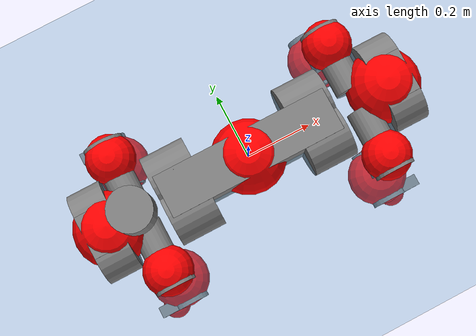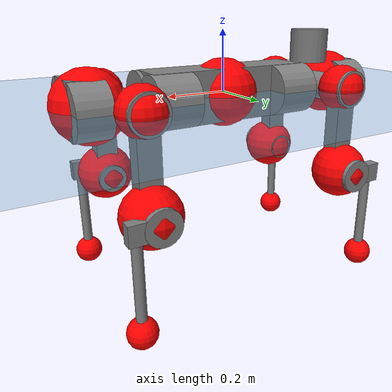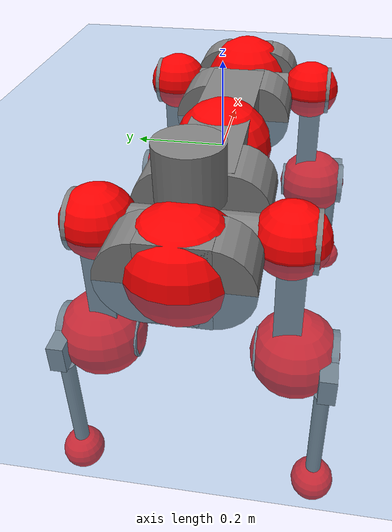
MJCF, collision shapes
<mujoco model="anymal_c">
  <compiler angle="radian" assetdir="assets" balanceinertia="true" inertiafromgeom="false"/>

  <option timestep="0.005" density="1.2" viscosity="2e-05"/>

  <size nkey="1"/>

  <visual>
    <quality shadowsize="8192"/>
    <map shadowclip="0.5"/>
  </visual>

  <default>
    <default class="/">
      <material specular="0" shininess="0.25"/>
      <geom contype="0" conaffinity="0" group="1" solref="-1000 -80"/>
      <site size="0.01 0.005 0.005" group="5"/>
      <general forcelimited="true" forcerange="-80 80" biastype="affine" gainprm="80" biasprm="0 -80 -2"/>
      <default class="anymal_c">
        <joint armature="0.01" damping="0.01" frictionloss="0.1"/>
        <default class="visual">
          <geom type="mesh" group="2"/>
          <default class="visual_zflip"/>
        </default>
        <default class="collision">
          <geom type="cylinder" group="3"/>
          <default class="foot">
            <geom size="0.03 0 0" type="sphere" condim="6" priority="1" friction="0.8 0.02 0.01" solimp="0.015 1 0.03"/>
          </default>
        </default>
      </default>
      <default class="reward_collision_sphere">
        <geom group="5" rgba="1 0 0 1"/>
      </default>
    </default>
  </default>

  <asset>
    <texture type="skybox" colorspace="auto" name="//unnamed_texture_0" builtin="gradient" rgb1="0.95 0.95 0.95" rgb2="0.95 0.95 0.95" width="100" height="600"/>
    <texture type="2d" colorspace="auto" name="texplane" builtin="checker" rgb1="0.345 0.575 0.748" rgb2="0.345 0.575 0.748" markrgb="1 1 1" width="512" height="512"/>
    <texture type="2d" colorspace="linear" name="base" file="base.png"/>
    <texture type="2d" colorspace="linear" name="top_shell" file="top_shell.png"/>
    <texture type="2d" colorspace="linear" name="bottom_shell" file="bottom_shell.png"/>
    <texture type="2d" colorspace="linear" name="remote" file="remote.png"/>
    <texture type="2d" colorspace="linear" name="hatch" file="hatch.png"/>
    <texture type="2d" colorspace="linear" name="handle" file="handle.png"/>
    <texture type="2d" colorspace="linear" name="face" file="face.png"/>
    <texture type="2d" colorspace="linear" name="battery" file="battery.png"/>
    <texture type="2d" colorspace="linear" name="lidar_cage" file="lidar_cage.png"/>
    <texture type="2d" colorspace="linear" name="depth_camera" file="depth_camera.png"/>
    <texture type="2d" colorspace="linear" name="wide_angle_camera" file="wide_angle_camera.png"/>
    <texture type="2d" colorspace="linear" name="lidar" file="lidar.png"/>
    <texture type="2d" colorspace="linear" name="drive" file="drive.png"/>
    <texture type="2d" colorspace="linear" name="hip_l" file="hip_l.png"/>
    <texture type="2d" colorspace="linear" name="shank_l" file="shank_l.png"/>
    <texture type="2d" colorspace="linear" name="foot" file="foot.png"/>
    <texture type="2d" colorspace="linear" name="thigh" file="thigh.png"/>
    <texture type="2d" colorspace="linear" name="shank_r" file="shank_r.png"/>
    <texture type="2d" colorspace="linear" name="hip_r" file="hip_r.png"/>
    <material name="MatPlane" class="/" texture="texplane" texuniform="true" texrepeat="2 2" specular="0.9" shininess="0.5"/>
    <material name="black_plastic" class="/" rgba="0.007 0.007 0.007 1"/>
    <material name="green" class="/" rgba="0.052 0.178 0.033 1"/>
    <material name="red" class="/" rgba="0.178 0.006 0.005 1"/>
    <material name="yellow" class="/" rgba="0.178 0.119 0.006 1"/>
    <material name="lwl" class="/" rgba="0.8 0.8 0.8 1"/>
    <material name="base" class="/" texture="base"/>
    <material name="top_shell" class="/" texture="top_shell"/>
    <material name="bottom_shell" class="/" texture="bottom_shell"/>
    <material name="hip_l" class="/" texture="hip_l"/>
    <material name="thigh" class="/" texture="thigh"/>
    <material name="shank_l" class="/" texture="shank_l"/>
    <material name="foot" class="/" texture="foot"/>
    <material name="hip_r" class="/" texture="hip_r"/>
    <material name="shank" class="/" texture="shank_r"/>
    <material name="hatch" class="/" texture="hatch"/>
    <material name="remote" class="/" texture="remote"/>
    <material name="handle" class="/" texture="handle"/>
    <material name="face" class="/" texture="face"/>
    <material name="depth_camera" class="/" texture="depth_camera"/>
    <material name="wide_angle_camera" class="/" texture="wide_angle_camera"/>
    <material name="battery" class="/" texture="battery"/>
    <material name="lidar_cage" class="/" texture="lidar_cage"/>
    <material name="lidar" class="/" texture="lidar"/>
    <material name="drive" class="/" texture="drive"/>
    <mesh name="base_0" class="/" file="base_0.obj"/>
    <mesh name="base_1" class="/" file="base_1.obj"/>
    <mesh name="base_2" class="/" file="base_2.obj"/>
    <mesh name="base_3" class="/" file="base_3.obj"/>
    <mesh name="base_4" class="/" file="base_4.obj"/>
    <mesh name="base_5" class="/" file="base_5.obj"/>
    <mesh name="top_shell" class="/" file="top_shell.obj"/>
    <mesh name="bottom_shell" class="/" file="bottom_shell.obj"/>
    <mesh name="remote" class="/" file="remote.obj"/>
    <mesh name="handle" class="/" file="handle.obj"/>
    <mesh name="face" class="/" file="face.obj"/>
    <mesh name="wide_angle_camera" class="/" file="wide_angle_camera.obj"/>
    <mesh name="depth_camera" class="/" file="depth_camera.obj"/>
    <mesh name="battery" class="/" file="battery.obj"/>
    <mesh name="lidar_cage" class="/" file="lidar_cage.obj"/>
    <mesh name="lidar" class="/" file="lidar.obj"/>
    <mesh name="drive" class="/" file="drive.obj"/>
    <mesh name="hip_l" class="/" file="hip_l.obj"/>
    <mesh name="thigh" class="/" file="thigh.obj"/>
    <mesh name="shank_l" class="/" file="shank_l.obj"/>
    <mesh name="foot" class="/" file="foot.obj"/>
    <mesh name="hip_r" class="/" file="hip_r.obj"/>
    <mesh name="hatch" class="/" file="hatch.obj"/>
    <mesh name="shank_r" class="/" file="shank_r.obj"/>
  </asset>

  <worldbody>
    <geom name="floor" class="/" size="100 100 0.125" type="plane" group="0" material="MatPlane"/>
    <light name="toplight_shadow" class="/" pos="0 0 5" dir="0.0990148 0.0990148 -0.990148" type="directional" ambient="0.04 0.04 0.04" diffuse="0.55 0.55 0.55" specular="0.12 0.12 0.12"/>
    <light name="toplight_fill" class="/" pos="0 0 5" dir="0.0990148 0.0990148 -0.990148" type="directional" castshadow="false" ambient="0.04 0.04 0.04" diffuse="0.3 0.3 0.3" specular="0.08 0.08 0.08"/>
    <body name="trunk" childclass="anymal_c" pos="-0.000169457 9.25199e-05 -0.00204041" quat="1 -4.3265e-05 0.000181806 0.000149205">
      <inertial pos="-0.000157728 -0.00288258 0.0494622" quat="0.502748 0.498566 0.498549 0.500126" mass="16.0623" diaginertia="0.654096 0.231428 0.24408"/>
      <joint name="//unnamed_joint_0" type="free" armature="0" damping="0" frictionloss="0"/>
      <geom name="//unnamed_geom_1" class="visual" material="green" mesh="base_0"/>
      <geom name="//unnamed_geom_2" class="visual" material="yellow" mesh="base_1"/>
      <geom name="//unnamed_geom_3" class="visual" material="red" mesh="base_2"/>
      <geom name="//unnamed_geom_4" class="visual" material="black_plastic" mesh="base_3"/>
      <geom name="//unnamed_geom_5" class="visual" material="lwl" mesh="base_4"/>
      <geom name="//unnamed_geom_6" class="visual" material="base" mesh="base_5"/>
      <geom name="trunk_1" class="collision" size="0.273567 0.0660334 0.0849001" type="box"/>
      <geom name="trunk_2" class="collision" size="0.0849001 0.0683918" pos="0.217478 0.057074 0" quat="0.707107 0 0.707107 0"/>
      <geom name="trunk_3" class="collision" size="0.0849001 0.0683918" pos="-0.217478 0.057074 0" quat="0.707107 0 0.707107 0"/>
      <geom name="trunk_4" class="collision" size="0.0849001 0.0683918" pos="0.217478 -0.057074 0" quat="0.707107 0 0.707107 0"/>
      <geom name="trunk_5" class="collision" size="0.0849001 0.0683918" pos="-0.217478 -0.057074 0" quat="0.707107 0 0.707107 0"/>
      <geom name="//unnamed_geom_12" class="visual" material="top_shell" mesh="top_shell"/>
      <geom name="//unnamed_geom_13" class="visual" material="bottom_shell" mesh="bottom_shell"/>
      <geom name="//unnamed_geom_14" class="visual" material="remote" mesh="remote"/>
      <geom name="//unnamed_geom_15" class="visual" material="handle" mesh="handle"/>
      <geom name="//unnamed_geom_16" class="visual" pos="0.414458 0 0" quat="1 0 0 0" material="face" mesh="face"/>
      <geom name="trunk_6" class="collision" size="0.0518834 0.0660334 0.0849001" pos="0.469453 0 0" type="box"/>
      <geom name="//unnamed_geom_18" class="collision" size="0.0849001 0.0518834" pos="0.469453 0.057074 0" quat="0.707107 0 0.707107 0"/>
      <geom name="//unnamed_geom_19" class="collision" size="0.0849001 0.0518834" pos="0.469453 -0.057074 0" quat="0.707107 0 0.707107 0"/>
      <geom name="//unnamed_geom_20" class="visual" pos="0.461604 0 -0.029744" quat="0.965926 0 0.258819 0" material="depth_camera" mesh="depth_camera"/>
      <geom name="//unnamed_geom_21" class="visual" pos="0.512948 0 0.015191" material="wide_angle_camera" mesh="wide_angle_camera"/>
      <geom name="//unnamed_geom_22" class="visual_zflip" pos="-0.414458 0 0" quat="0 0 0 1" material="face" mesh="face"/>
      <geom name="trunk_7" class="collision" size="0.0518834 0.0660334 0.0849001" pos="-0.469453 0 0" quat="0 0 0 1" type="box"/>
      <geom name="//unnamed_geom_24" class="collision" size="0.0849001 0.0518834" pos="-0.469453 -0.057074 0" quat="0 -0.707107 0 0.707107"/>
      <geom name="//unnamed_geom_25" class="collision" size="0.0849001 0.0518834" pos="-0.469453 0.057074 0" quat="0 -0.707107 0 0.707107"/>
      <geom name="//unnamed_geom_26" class="visual" pos="-0.461604 0 -0.029744" quat="0 -0.258819 0 0.965926" material="depth_camera" mesh="depth_camera"/>
      <geom name="//unnamed_geom_27" class="visual_zflip" pos="-0.512948 0 0.015191" quat="0 0 0 1" material="wide_angle_camera" mesh="wide_angle_camera"/>
      <geom name="//unnamed_geom_28" class="visual" material="battery" mesh="battery"/>
      <geom name="//unnamed_geom_29" class="visual" pos="0 0.05992 0.0293659" quat="0.683013 -0.183013 0.183013 0.683013" material="depth_camera" mesh="depth_camera"/>
      <geom name="//unnamed_geom_30" class="visual" pos="0 -0.05992 0.0293659" quat="0.683013 0.183013 0.183013 -0.683013" material="depth_camera" mesh="depth_camera"/>
      <geom name="//unnamed_geom_31" class="visual" pos="-0.363963 0 0.074585" quat="1 0 0 0" material="lidar_cage" mesh="lidar_cage"/>
      <geom name="trunk_8" class="collision" size="0.0660334 0.0566001" pos="-0.363963 0 0.135471"/>
      <geom name="//unnamed_geom_33" class="visual" pos="-0.363963 -7.25071e-05 0.144299" quat="0.707107 0 0 -0.707107" material="lidar" mesh="lidar"/>
      <geom name="//unnamed_geom_34" class="visual" pos="0.29987 0.0848665 -3.43999e-09" quat="0.258819 0.965926 0 0" material="drive" mesh="drive"/>
      <geom name="//unnamed_geom_35" class="visual" pos="0.29987 -0.0848665 3.43999e-09" quat="0.258819 -0.965926 0 0" material="drive" mesh="drive"/>
      <geom name="//unnamed_geom_36" class="visual" pos="-0.29987 0.0848665 3.43999e-09" quat="0 0 0.965926 -0.258819" material="drive" mesh="drive"/>
      <geom name="//unnamed_geom_37" class="visual" pos="-0.29987 -0.0848665 -3.43999e-09" quat="0 0 -0.965926 -0.258819" material="drive" mesh="drive"/>
      <geom name="//unnamed_geom_38" class="visual" pos="0.115988 0 0.0740776" quat="1 0 0 0" material="hatch" mesh="hatch"/>
      <geom name="//unnamed_geom_39" class="reward_collision_sphere" size="0.1132"/>
      <geom name="//unnamed_geom_40" class="reward_collision_sphere" size="0.1132" pos="0.449955 0 0"/>
      <geom name="//unnamed_geom_41" class="reward_collision_sphere" size="0.1132" pos="-0.449955 0 0"/>
      <site name="imu" pos="0.235627 0.0107153 0.0604777" size="0.00943335"/>
      <camera name="track" pos="0 -1.63069 0" quat="0.707107 0.707107 0 0" mode="trackcom"/>
      <camera name="ego_camera" pos="0.449955 0 -0.0405905" quat="-0.5 -0.5 0.5 0.5"/>
      <body name="LF_HIP" pos="0.299465 0.0860466 0.00120142" quat="0.258751 0.965944 -0.000410045 0.000114305">
        <inertial pos="0.0594133 -0.012913 -0.00834571" quat="-0.13119 0.712663 -0.130139 0.676731" mass="2.24023" diaginertia="0.005618 0.00175646 0.00349303"/>
        <joint name="LF_HAA" pos="0 0 0" axis="0.999893 -0.0111665 -0.00947694" range="-0.72198 0.509179" armature="0.0107114" damping="0" frictionloss="0.0992536"/>
        <geom name="//unnamed_geom_42" class="visual" pos="0 -0.000202359 3.32374e-05" quat="0.258819 -0.965926 0 0" material="hip_l" mesh="hip_l"/>
        <geom name="//unnamed_geom_43" class="visual" pos="0.059894 -0.0702152 -0.0420138" quat="0.183013 -0.683013 0.683013 0.183013" material="drive" mesh="drive"/>
        <geom name="//unnamed_geom_44" class="collision" size="0.0471667 0.0660334" pos="0.059894 -0.00975134 -0.00700693" quat="-0.353553 -0.612372 0.612372 -0.353553"/>
        <body name="LF_THIGH" pos="0.0600645 -0.0581969 -0.0439218" quat="0.182936 -0.683031 0.682999 0.183071">
          <inertial pos="0.0314937 -9.80337e-05 -0.246559" quat="0.99297 -0.00446562 -0.0846708 0.0825873" mass="2.63554" diaginertia="0.0292964 0.0107927 0.00457486"/>
          <joint name="LF_HFE" pos="0 0 0" axis="0.999877 0.00106806 0.0156591" range="-3.12617 3.11628" armature="0.00901744" damping="0.0127342" frictionloss="0.0816414"/>
          <geom name="//unnamed_geom_45" class="visual" pos="0.00367194 5.78612e-06 0" quat="0.707107 0 0 -0.707107" material="thigh" mesh="thigh"/>
          <geom name="//unnamed_geom_46" class="collision" size="0.0613167 0.0377334" pos="0.039996 0 0" quat="0.5 0.5 -0.5 -0.5"/>
          <geom name="//unnamed_geom_47" class="collision" size="0.035375 0.0283 0.133306" pos="0.029997 0 -0.1434" quat="0.707107 0 0 -0.707107" type="box"/>
          <geom name="//unnamed_geom_48" class="visual" pos="0.10029 0 -0.289207" quat="1 0 0 0" material="drive" mesh="drive"/>
          <geom name="//unnamed_geom_49" class="collision" size="0.0471667 0.0660334" pos="0.0302969 0 -0.289207" quat="0.707107 0 0.707107 0"/>
          <geom name="//unnamed_geom_50" class="reward_collision_sphere" size="0.0754668" pos="0.0249975 0 0"/>
          <body name="LF_SHANK" pos="0.103319 -0.00312397 -0.292067" quat="0.999999 4.24456e-06 -3.7545e-05 -0.00132033">
            <inertial pos="0.00647777 -0.0498371 -0.0809165" quat="0.992578 -0.11875 0.00277174 -0.0260682" mass="0.484021" diaginertia="0.0100076 0.00330907 0.00120358"/>
            <joint name="LF_KFE" pos="0 0 0" axis="1 -0.00066669 0.00066226" range="-3.17872 3.13536" armature="0.00986054" damping="0" frictionloss="0.102229"/>
            <geom name="//unnamed_geom_51" class="visual" pos="0.00119734 0.00638428 0" quat="0.707107 0 0 -0.707107" material="shank_l" mesh="shank_l"/>
            <geom name="LF_kfe_act" class="collision" size="0.0566001 0.0188667" pos="0.019998 0 0" quat="0.5 0.5 -0.5 -0.5"/>
            <geom name="//unnamed_geom_53" class="collision" size="0.0542408 0.0318375 0.0179234" pos="0.019998 -0.0468814 0" quat="0.5 0.5 -0.5 -0.5" type="box"/>
            <geom name="//unnamed_geom_54" class="visual" pos="0.0130484 -0.069652 -0.342959" quat="0.382683 0 0 -0.92388" material="foot" mesh="foot"/>
            <geom name="LF_calf" class="collision" size="0.0165084 0.133248" pos="0.0130487 -0.0717094 -0.17148" quat="0.707107 0 0 -0.707107"/>
            <geom name="LF_foot" class="foot" size="0.0302488" pos="0.0130487 -0.0717094 -0.320127" quat="0.707107 0 0 -0.707107"/>
            <geom name="//unnamed_geom_57" class="reward_collision_sphere" size="0.0943335" pos="-0.049995 0 0"/>
            <geom name="//unnamed_geom_58" class="reward_collision_sphere" size="0.0471667" pos="0.0130487 -0.0717094 -0.320127"/>
            <site name="LF_foot" class="foot" pos="0.0130487 -0.0717094 -0.320127" quat="0.707107 0 0 -0.707107" size="0.00943335"/>
          </body>
        </body>
      </body>
      <body name="RF_HIP" pos="0.298941 -0.0860656 -4.11916e-05" quat="0.258929 -0.965896 2.69149e-05 -0.000142331">
        <inertial pos="0.0594566 0.0132632 -0.00859952" quat="0.134566 0.679072 0.126776 0.710409" mass="2.41036" diaginertia="0.00594872 0.001837 0.00362153"/>
        <joint name="RF_HAA" pos="0 0 0" axis="1 0.000153291 -0.000665209" range="-0.547159 0.704685" armature="0.00819459" damping="0.00906924" frictionloss="0.0815244"/>
        <geom name="//unnamed_geom_59" class="visual" pos="0 0.000202358 3.32373e-05" quat="0.258819 0.965926 0 0" material="hip_r" mesh="hip_r"/>
        <geom name="//unnamed_geom_60" class="visual" pos="0.059894 0.0702152 -0.0420138" quat="0.183013 0.683013 0.683013 -0.183013" material="drive" mesh="drive"/>
        <geom name="//unnamed_geom_61" class="collision" size="0.0471667 0.0660334" pos="0.059894 0.00975134 -0.00700693" quat="-0.353553 0.612372 0.612372 0.353553"/>
        <body name="RF_THIGH" pos="0.0600917 0.062085 -0.0438051" quat="0.183068 0.682835 0.683089 -0.183336">
          <inertial pos="0.0307309 -0.00101097 -0.248683" quat="0.994018 0.0026468 -0.0726072 0.0815498" mass="2.41595" diaginertia="0.0292483 0.0106721 0.00439745"/>
          <joint name="RF_HFE" pos="0 0 0" axis="0.999961 -0.0079727 -0.0037897" stiffness="0.00620142" range="-3.08972 3.17846" armature="0.00952262" damping="0" frictionloss="0.105813"/>
          <geom name="//unnamed_geom_62" class="visual" pos="0.00367194 5.78612e-06 0" quat="0.707107 0 0 -0.707107" material="thigh" mesh="thigh"/>
          <geom name="//unnamed_geom_63" class="collision" size="0.0613167 0.0377334" pos="0.039996 0 0" quat="0.5 0.5 0.5 0.5"/>
          <geom name="//unnamed_geom_64" class="collision" size="0.035375 0.0283 0.133306" pos="0.029997 0 -0.1434" quat="0.707107 0 0 0.707107" type="box"/>
          <geom name="//unnamed_geom_65" class="visual" pos="0.10029 0 -0.289207" quat="1 0 0 0" material="drive" mesh="drive"/>
          <geom name="//unnamed_geom_66" class="collision" size="0.0471667 0.0660334" pos="0.0302969 0 -0.289207" quat="0.707107 0 0.707107 0"/>
          <geom name="//unnamed_geom_67" class="reward_collision_sphere" size="0.0754668" pos="0.0249975 0 0"/>
          <body name="RF_SHANK" pos="0.102401 -0.00229228 -0.289095" quat="1 -1.19335e-05 3.9308e-05 1.54634e-05">
            <inertial pos="0.0057842 0.0496237 -0.0788716" quat="0.993452 0.111416 0.0038814 0.0249862" mass="0.49847" diaginertia="0.00979961 0.00321825 0.00120717"/>
            <joint name="RF_KFE" pos="0 0 0" axis="1 -0.000396435 0.000689768" stiffness="0.000455377" range="-3.15699 3.16839" armature="0.00974484" damping="0.00508021" frictionloss="0.0816015"/>
            <geom name="//unnamed_geom_68" class="visual" pos="0.00119733 -0.00638427 0" quat="0.707107 0 0 0.707107" material="shank" mesh="shank_r"/>
            <geom name="RF_kfe_act" class="collision" size="0.0566001 0.0188667" pos="0.019998 0 0" quat="0.5 0.5 0.5 0.5"/>
            <geom name="//unnamed_geom_70" class="collision" size="0.0542408 0.0318375 0.0179234" pos="0.019998 0.0468814 0" quat="0.5 0.5 0.5 0.5" type="box"/>
            <geom name="//unnamed_geom_71" class="visual" pos="0.013049 0.069652 -0.342959" quat="0.382683 0 0 0.92388" material="foot" mesh="foot"/>
            <geom name="RF_calf" class="collision" size="0.0165084 0.133248" pos="0.0130487 0.0717094 -0.17148" quat="0.707107 0 0 0.707107"/>
            <geom name="RF_foot" class="foot" size="0.026621" pos="0.0130487 0.0717094 -0.320127" quat="0.707107 0 0 0.707107"/>
            <geom name="//unnamed_geom_74" class="reward_collision_sphere" size="0.0943335" pos="-0.049995 0 0"/>
            <geom name="//unnamed_geom_75" class="reward_collision_sphere" size="0.0471667" pos="0.0130487 0.0717094 -0.320127"/>
            <site name="RF_foot" class="foot" pos="0.0130487 0.0717094 -0.320127" quat="0.707107 0 0 0.707107" size="0.00943335"/>
          </body>
        </body>
      </body>
      <body name="LH_HIP" pos="-0.302076 0.0855429 0.000843861" quat="0.000135724 9.66111e-05 0.965844 -0.259123">
        <inertial pos="0.0572219 0.0149336 -0.00809534" quat="0.128074 0.67908 0.125769 0.711779" mass="2.3217" diaginertia="0.00569224 0.00177187 0.00330781"/>
        <joint name="LH_HAA" pos="0 0 0" axis="1 0.000235812 8.52934e-06" range="-0.499873 0.674467" armature="0.00800754" damping="0.00600406" frictionloss="0.0920226"/>
        <geom name="//unnamed_geom_76" class="visual" pos="0 0.000202358 3.32373e-05" quat="-0.258819 -0.965926 0 0" material="hip_r" mesh="hip_r"/>
        <geom name="//unnamed_geom_77" class="visual" pos="0.059894 0.0702152 -0.0420138" quat="0.183013 0.683013 0.683013 -0.183013" material="drive" mesh="drive"/>
        <geom name="//unnamed_geom_78" class="collision" size="0.0471667 0.0660334" pos="0.059894 0.00975134 -0.00700693" quat="-0.353553 0.612372 0.612372 0.353553"/>
        <body name="LH_THIGH" pos="0.0572309 0.0565986 -0.0422032" quat="0.183066 0.683071 0.682911 -0.183123">
          <inertial pos="0.0308219 0.002389 -0.248179" quat="0.992782 -0.00495628 -0.0806109 0.0886622" mass="2.5802" diaginertia="0.0301346 0.0105618 0.00445846"/>
          <joint name="LH_HFE" pos="0 0 0" axis="0.999929 0.0110836 0.00440924" stiffness="0.00204338" range="-3.14556 3.14827" armature="0.00903305" damping="0.00641219" frictionloss="0.0926102"/>
          <geom name="//unnamed_geom_79" class="visual" pos="0.00367194 5.78612e-06 0" quat="0.707107 0 0 -0.707107" material="thigh" mesh="thigh"/>
          <geom name="//unnamed_geom_80" class="collision" size="0.0613167 0.0377334" pos="0.039996 0 0" quat="0.5 0.5 -0.5 -0.5"/>
          <geom name="//unnamed_geom_81" class="collision" size="0.035375 0.0283 0.133306" pos="0.029997 0 -0.1434" quat="0.707107 0 0 -0.707107" type="box"/>
          <geom name="//unnamed_geom_82" class="visual" pos="0.10029 0 -0.289207" quat="1 0 0 0" material="drive" mesh="drive"/>
          <geom name="//unnamed_geom_83" class="collision" size="0.0471667 0.0660334" pos="0.0302969 0 -0.289207" quat="0.707107 0 0.707107 0"/>
          <geom name="//unnamed_geom_84" class="reward_collision_sphere" size="0.0754668" pos="0.0249975 0 0"/>
          <body name="LH_SHANK" pos="0.0983487 -0.000332269 -0.289627" quat="1 0.000112577 0.000176022 6.02814e-05">
            <inertial pos="0.00543535 0.0499314 -0.0819993" quat="0.992615 0.119286 -0.011058 0.0190864" mass="0.491994" diaginertia="0.0101536 0.00329374 0.00116151"/>
            <joint name="LH_KFE" pos="0 0 0" axis="0.999822 -0.0122078 -0.014387" range="-3.14331 3.13672" armature="0.00839776" damping="0.00591193" frictionloss="0.10288"/>
            <geom name="//unnamed_geom_85" class="visual" pos="0.00119733 -0.00638427 0" quat="-0.707107 0 0 -0.707107" material="shank" mesh="shank_r"/>
            <geom name="LH_kfe_act" class="collision" size="0.0566001 0.0188667" pos="0.019998 0 0" quat="0.5 0.5 -0.5 -0.5"/>
            <geom name="//unnamed_geom_87" class="collision" size="0.0542408 0.0318375 0.0179234" pos="0.019998 0.0468814 0" quat="0.5 0.5 -0.5 -0.5" type="box"/>
            <geom name="//unnamed_geom_88" class="visual" pos="0.013049 0.069652 -0.342959" quat="-0.382683 0 0 -0.92388" material="foot" mesh="foot"/>
            <geom name="LH_calf" class="collision" size="0.0165084 0.133248" pos="0.0130487 0.0717094 -0.17148" quat="0.707107 0 0 -0.707107"/>
            <geom name="LH_foot" class="foot" size="0.0338775" pos="0.0130487 0.0717094 -0.320127" quat="0.707107 0 0 -0.707107"/>
            <geom name="//unnamed_geom_91" class="reward_collision_sphere" size="0.0943335" pos="-0.049995 0 0"/>
            <geom name="//unnamed_geom_92" class="reward_collision_sphere" size="0.0471667" pos="0.0130487 0.0717094 -0.320127"/>
            <site name="LH_foot" class="foot" pos="0.0130487 0.0717094 -0.320127" quat="0.707107 0 0 -0.707107" size="0.00943335"/>
          </body>
        </body>
      </body>
      <body name="RH_HIP" pos="-0.299421 -0.0880571 0.000150988" quat="-0.000157834 -0.000525212 -0.966205 -0.257775">
        <inertial pos="0.053917 -0.0128604 -0.00601237" quat="-0.127485 0.711145 -0.131091 0.678849" mass="2.3063" diaginertia="0.0057819 0.00175785 0.00338706"/>
        <joint name="RH_HAA" pos="0 0 0" axis="0.999999 0.00127571 0.000482102" range="-0.77627 0.546379" armature="0.00945854" damping="0.0012612" frictionloss="0.092779"/>
        <geom name="//unnamed_geom_93" class="visual" pos="0 -0.000202359 3.32374e-05" quat="-0.258819 0.965926 0 0" material="hip_l" mesh="hip_l"/>
        <geom name="//unnamed_geom_94" class="visual" pos="0.059894 -0.0702152 -0.0420138" quat="-0.183013 0.683013 -0.683013 -0.183013" material="drive" mesh="drive"/>
        <geom name="//unnamed_geom_95" class="collision" size="0.0471667 0.0660334" pos="0.059894 -0.00975134 -0.00700693" quat="0.353553 0.612372 -0.612372 0.353553"/>
        <body name="RH_THIGH" pos="0.0597642 -0.0598855 -0.0408325" quat="-0.182888 0.682901 -0.683227 -0.182752">
          <inertial pos="0.0333328 0.00101017 -0.250113" quat="0.993169 -0.00437076 -0.080809 0.0840641" mass="2.41251" diaginertia="0.0283122 0.0105024 0.00430214"/>
          <joint name="RH_HFE" pos="0 0 0" axis="0.999949 -0.00483732 -0.00884032" stiffness="0.000680966" range="-3.13612 3.13517" armature="0.00940044" damping="0.00945202" frictionloss="0.093032"/>
          <geom name="//unnamed_geom_96" class="visual" pos="0.00367194 5.78612e-06 0" quat="0.707107 0 0 -0.707107" material="thigh" mesh="thigh"/>
          <geom name="//unnamed_geom_97" class="collision" size="0.0613167 0.0377334" pos="0.039996 0 0" quat="0.5 0.5 0.5 0.5"/>
          <geom name="//unnamed_geom_98" class="collision" size="0.035375 0.0283 0.133306" pos="0.029997 0 -0.1434" quat="0.707107 0 0 0.707107" type="box"/>
          <geom name="//unnamed_geom_99" class="visual" pos="0.10029 0 -0.289207" quat="1 0 0 0" material="drive" mesh="drive"/>
          <geom name="//unnamed_geom_100" class="collision" size="0.0471667 0.0660334" pos="0.0302969 0 -0.289207" quat="0.707107 0 0.707107 0"/>
          <geom name="//unnamed_geom_101" class="reward_collision_sphere" size="0.0754668" pos="0.0249975 0 0"/>
          <body name="RH_SHANK" pos="0.0975896 0.00160682 -0.289717" quat="1 1.71163e-05 3.22519e-05 -0.000215706">
            <inertial pos="0.00571552 -0.0498173 -0.0815849" quat="0.992055 -0.123403 -0.011094 -0.0217898" mass="0.490571" diaginertia="0.0100051 0.00343628 0.00121232"/>
            <joint name="RH_KFE" pos="0 0 0" axis="0.99999 0.00441676 0.00122042" stiffness="0.00606099" range="-3.11432 3.148" armature="0.00814367" damping="0.00385899" frictionloss="0.094742"/>
            <geom name="//unnamed_geom_102" class="visual" pos="0.00119734 0.00638428 0" quat="0.707107 0 0 -0.707107" material="shank_l" mesh="shank_l"/>
            <geom name="RH_kfe_act" class="collision" size="0.0566001 0.0188667" pos="0.019998 0 0" quat="0.5 0.5 0.5 0.5"/>
            <geom name="//unnamed_geom_104" class="collision" size="0.0542408 0.0318375 0.0179234" pos="0.019998 -0.0468814 0" quat="0.5 0.5 0.5 0.5" type="box"/>
            <geom name="//unnamed_geom_105" class="visual" pos="0.0130484 -0.069652 -0.342959" quat="0.382683 0 0 -0.92388" material="foot" mesh="foot"/>
            <geom name="RH_calf" class="collision" size="0.0165084 0.133248" pos="0.0130487 -0.0717094 -0.17148" quat="0.707107 0 0 0.707107"/>
            <geom name="RH_foot" class="foot" size="0.0236184" pos="0.0130487 -0.0717094 -0.320127" quat="0.707107 0 0 0.707107"/>
            <geom name="//unnamed_geom_108" class="reward_collision_sphere" size="0.0943335" pos="-0.049995 0 0"/>
            <geom name="//unnamed_geom_109" class="reward_collision_sphere" size="0.0471667" pos="0.0130487 -0.0717094 -0.320127"/>
            <site name="RH_foot" class="foot" pos="0.0130487 -0.0717094 -0.320127" quat="0.707107 0 0 0.707107" size="0.00943335"/>
          </body>
        </body>
      </body>
    </body>
  </worldbody>

  <contact>
    <pair class="/" geom1="floor" geom2="LF_foot" name="//unnamed_contact_0"/>
    <pair class="/" geom1="floor" geom2="RF_foot" name="//unnamed_contact_1"/>
    <pair class="/" geom1="floor" geom2="LH_foot" name="//unnamed_contact_2"/>
    <pair class="/" geom1="floor" geom2="RH_foot" name="//unnamed_contact_3"/>
  </contact>

  <actuator>
    <general name="LF_HAA" class="/" joint="LF_HAA" forcerange="-78.6556 78.6556" gainprm="79.8379" biasprm="0 -79.8379 -1.81732"/>
    <general name="LF_HFE" class="/" joint="LF_HFE" forcerange="-72.4806 72.4806" gainprm="79.8379" biasprm="0 -79.8379 -1.81732"/>
    <general name="LF_KFE" class="/" joint="LF_KFE" forcerange="-77.86 77.86" gainprm="79.8379" biasprm="0 -79.8379 -1.81732"/>
    <general name="RF_HAA" class="/" joint="RF_HAA" forcerange="-71.9291 71.9291" gainprm="79.8379" biasprm="0 -79.8379 -1.81732"/>
    <general name="RF_HFE" class="/" joint="RF_HFE" forcerange="-79.5201 79.5201" gainprm="79.8379" biasprm="0 -79.8379 -1.81732"/>
    <general name="RF_KFE" class="/" joint="RF_KFE" forcerange="-68.3376 68.3376" gainprm="79.8379" biasprm="0 -79.8379 -1.81732"/>
    <general name="LH_HAA" class="/" joint="LH_HAA" forcerange="-75.6564 75.6564" gainprm="79.8379" biasprm="0 -79.8379 -1.81732"/>
    <general name="LH_HFE" class="/" joint="LH_HFE" forcerange="-68.4533 68.4533" gainprm="79.8379" biasprm="0 -79.8379 -1.81732"/>
    <general name="LH_KFE" class="/" joint="LH_KFE" forcerange="-77.9631 77.9631" gainprm="79.8379" biasprm="0 -79.8379 -1.81732"/>
    <general name="RH_HAA" class="/" joint="RH_HAA" forcerange="-77.9285 77.9285" gainprm="79.8379" biasprm="0 -79.8379 -1.81732"/>
    <general name="RH_HFE" class="/" joint="RH_HFE" forcerange="-68.4609 68.4609" gainprm="79.8379" biasprm="0 -79.8379 -1.81732"/>
    <general name="RH_KFE" class="/" joint="RH_KFE" forcerange="-83.1315 83.1315" gainprm="79.8379" biasprm="0 -79.8379 -1.81732"/>
  </actuator>

  <sensor>
    <gyro site="imu" name="imu_angular_velocity"/>
    <velocimeter site="imu" name="imu_linear_velocity"/>
    <framelinvel objtype="site" objname="LF_foot" name="LF_foot_global_linear_velocity"/>
    <framelinvel objtype="site" objname="RF_foot" name="RF_foot_global_linear_velocity"/>
    <framelinvel objtype="site" objname="LH_foot" name="LH_foot_global_linear_velocity"/>
    <framelinvel objtype="site" objname="RH_foot" name="RH_foot_global_linear_velocity"/>
  </sensor>

  <keyframe>
    <key name="home" qpos="0 0 0.55 1 0 0 0 0 0.4 -0.8 0 -0.4 0.8 0 -0.4 0.8 0 0.4 -0.8"/>
  </keyframe>
</mujoco>
